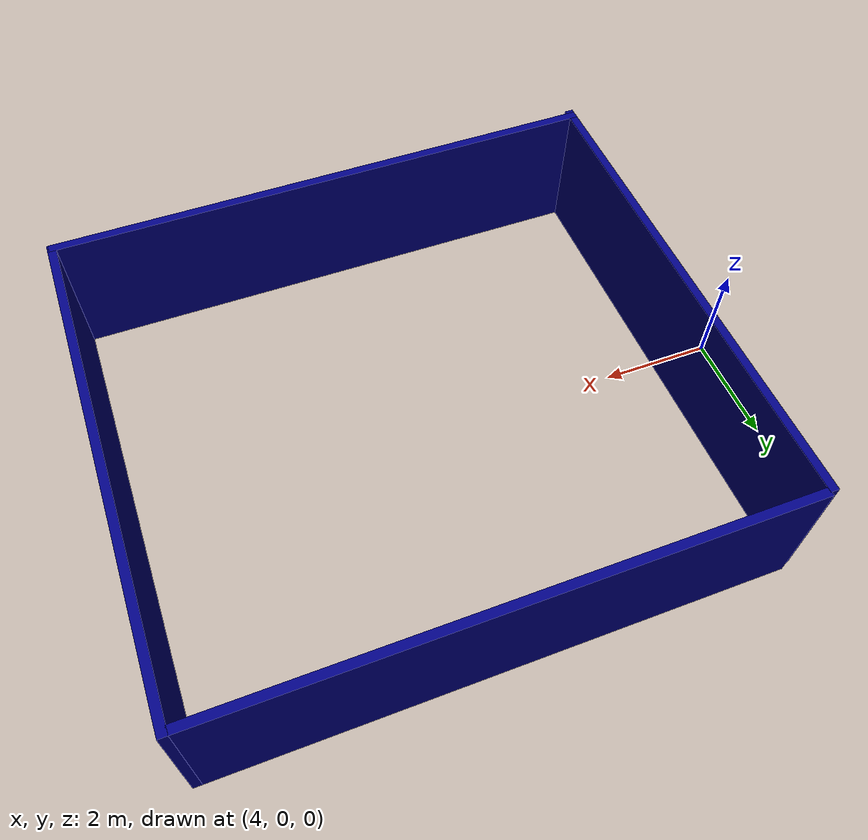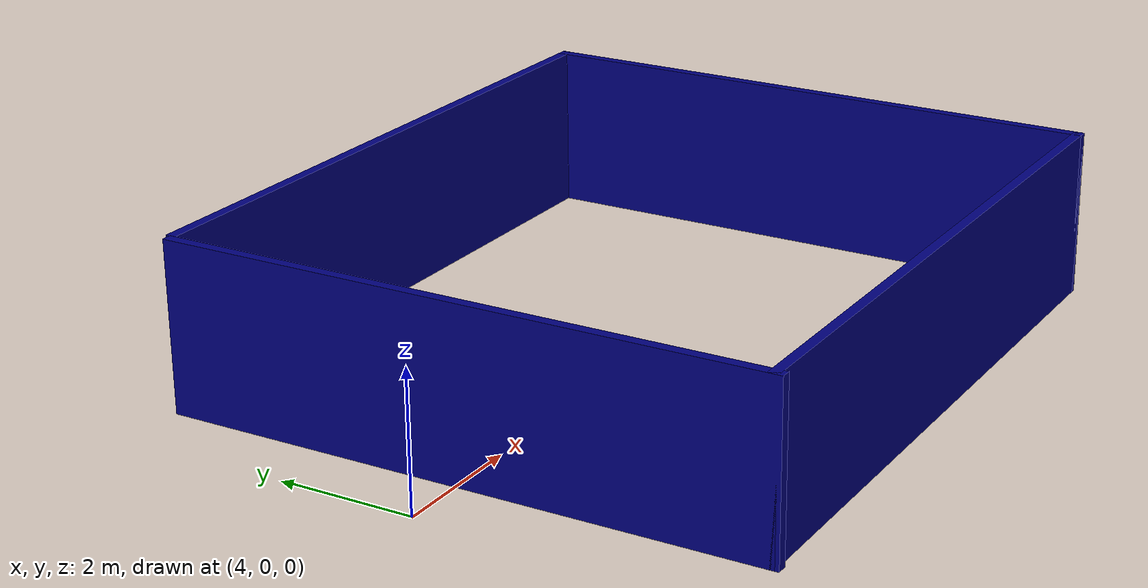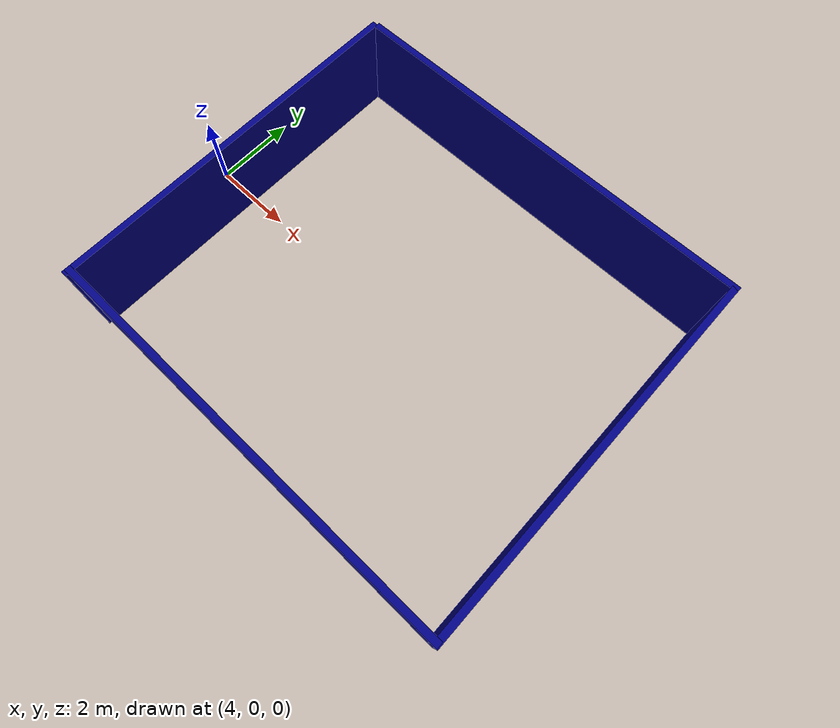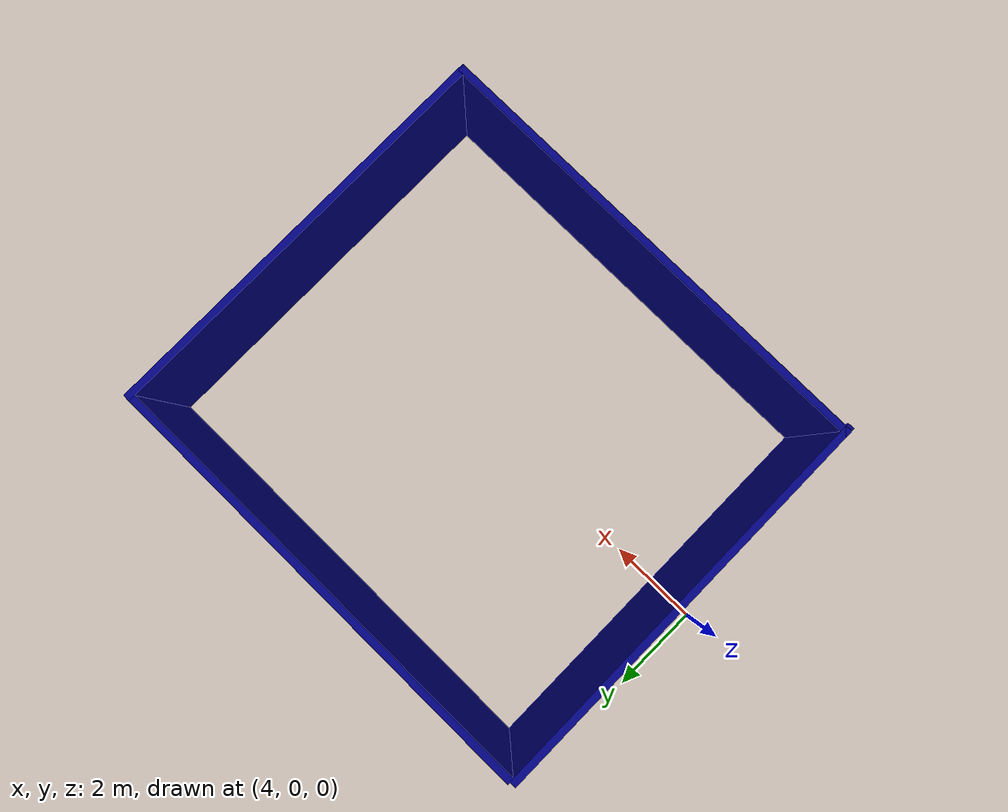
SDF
<sdf version="1.5">
 <world name="default">
  <include><uri>model://sun</uri></include>
  <include><uri>model://square_frame</uri><pose>10 0 0 0 0 0</pose></include>
  <scene><sky><clouds><speed>50</speed></clouds></sky><ambient>0 0 0 1.0</ambient><shadows>0</shadows></scene>
 </world>
</sdf>

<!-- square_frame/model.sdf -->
<sdf version='1.6'>
  <model name='square_frame'>
    <link name='Wall_0'>
      <pose frame=''>-4.99265 -0.03059 0 0 0 -1.5708</pose>
      <self_collide>0</self_collide>
      <enable_wind>0</enable_wind>
      <kinematic>0</kinematic>
      <visual name='Wall_0_Visual'>
        <pose frame=''>0 0 1.25 0 -0 0</pose>
        <geometry>
          <box>
            <size>9 0.15 2.5</size>
          </box>
        </geometry>
        <material>
          <script>
            <uri>file://media/materials/scripts/gazebo.material</uri>
            <name>Gazebo/Grey</name>
          </script>
          <ambient>0 0 0.498039 1</ambient>
        </material>
        <meta>
          <layer>0</layer>
        </meta>
        <transparency>0</transparency>
        <cast_shadows>1</cast_shadows>
      </visual>
      <collision name='Wall_0_Collision'>
        <laser_retro>0</laser_retro>
        <max_contacts>10</max_contacts>
        <pose frame=''>0 0 1.25 0 -0 0</pose>
        <geometry>
          <box>
            <size>9 0.15 2.5</size>
          </box>
        </geometry>
        <surface>
          <friction>
            <ode>
              <mu>1</mu>
              <mu2>1</mu2>
              <fdir1>0 0 0</fdir1>
              <slip1>0</slip1>
              <slip2>0</slip2>
            </ode>
            <torsional>
              <coefficient>1</coefficient>
              <patch_radius>0</patch_radius>
              <surface_radius>0</surface_radius>
              <use_patch_radius>1</use_patch_radius>
              <ode>
                <slip>0</slip>
              </ode>
            </torsional>
          </friction>
          <bounce>
            <restitution_coefficient>0</restitution_coefficient>
            <threshold>1e+06</threshold>
          </bounce>
          <contact>
            <collide_without_contact>0</collide_without_contact>
            <collide_without_contact_bitmask>1</collide_without_contact_bitmask>
            <collide_bitmask>1</collide_bitmask>
            <ode>
              <soft_cfm>0</soft_cfm>
              <soft_erp>0.2</soft_erp>
              <kp>1e+13</kp>
              <kd>1</kd>
              <max_vel>0.01</max_vel>
              <min_depth>0</min_depth>
            </ode>
            <bullet>
              <split_impulse>1</split_impulse>
              <split_impulse_penetration_threshold>-0.01</split_impulse_penetration_threshold>
              <soft_cfm>0</soft_cfm>
              <soft_erp>0.2</soft_erp>
              <kp>1e+13</kp>
              <kd>1</kd>
            </bullet>
          </contact>
        </surface>
      </collision>
    </link>

    <link name='Wall_2'>
      <pose frame=''>-0.011565 -4.39441 0 0 -0 0</pose>
      <self_collide>0</self_collide>
      <enable_wind>0</enable_wind>
      <kinematic>0</kinematic>
      <visual name='Wall_2_Visual'>
        <pose frame=''>0 0 1.25 0 -0 0</pose>
        <geometry>
          <box>
            <size>10.1122 0.15 2.5</size>
          </box>
        </geometry>
        <material>
          <script>
            <uri>file://media/materials/scripts/gazebo.material</uri>
            <name>Gazebo/Grey</name>
          </script>
          <ambient>0 0 0.498039 1</ambient>
        </material>
        <meta>
          <layer>0</layer>
        </meta>
        <transparency>0</transparency>
        <cast_shadows>1</cast_shadows>
      </visual>
      <collision name='Wall_2_Collision'>
        <laser_retro>0</laser_retro>
        <max_contacts>10</max_contacts>
        <pose frame=''>0 0 1.25 0 -0 0</pose>
        <geometry>
          <box>
            <size>10.1122 0.15 2.5</size>
          </box>
        </geometry>
        <surface>
          <friction>
            <ode>
              <mu>1</mu>
              <mu2>1</mu2>
              <fdir1>0 0 0</fdir1>
              <slip1>0</slip1>
              <slip2>0</slip2>
            </ode>
            <torsional>
              <coefficient>1</coefficient>
              <patch_radius>0</patch_radius>
              <surface_radius>0</surface_radius>
              <use_patch_radius>1</use_patch_radius>
              <ode>
                <slip>0</slip>
              </ode>
            </torsional>
          </friction>
          <bounce>
            <restitution_coefficient>0</restitution_coefficient>
            <threshold>1e+06</threshold>
          </bounce>
          <contact>
            <collide_without_contact>0</collide_without_contact>
            <collide_without_contact_bitmask>1</collide_without_contact_bitmask>
            <collide_bitmask>1</collide_bitmask>
            <ode>
              <soft_cfm>0</soft_cfm>
              <soft_erp>0.2</soft_erp>
              <kp>1e+13</kp>
              <kd>1</kd>
              <max_vel>0.01</max_vel>
              <min_depth>0</min_depth>
            </ode>
            <bullet>
              <split_impulse>1</split_impulse>
              <split_impulse_penetration_threshold>-0.01</split_impulse_penetration_threshold>
              <soft_cfm>0</soft_cfm>
              <soft_erp>0.2</soft_erp>
              <kp>1e+13</kp>
              <kd>1</kd>
            </bullet>
          </contact>
        </surface>
      </collision>
    </link>

    <link name='Wall_3'>
      <pose frame=''>4.99265 0.03059 0 0 -0 1.5708</pose>
      <self_collide>0</self_collide>
      <enable_wind>0</enable_wind>
      <kinematic>0</kinematic>
      <visual name='Wall_3_Visual'>
        <pose frame=''>0 0 1.25 0 -0 0</pose>
        <geometry>
          <box>
            <size>9 0.15 2.5</size>
          </box>
        </geometry>
        <material>
          <script>
            <uri>file://media/materials/scripts/gazebo.material</uri>
            <name>Gazebo/Grey</name>
          </script>
          <ambient>0 0 0.498039 1</ambient>
        </material>
        <meta>
          <layer>0</layer>
        </meta>
        <transparency>0</transparency>
        <cast_shadows>1</cast_shadows>
      </visual>
      <collision name='Wall_3_Collision'>
        <laser_retro>0</laser_retro>
        <max_contacts>10</max_contacts>
        <pose frame=''>0 0 1.25 0 -0 0</pose>
        <geometry>
          <box>
            <size>9 0.15 2.5</size>
          </box>
        </geometry>
        <surface>
          <friction>
            <ode>
              <mu>1</mu>
              <mu2>1</mu2>
              <fdir1>0 0 0</fdir1>
              <slip1>0</slip1>
              <slip2>0</slip2>
            </ode>
            <torsional>
              <coefficient>1</coefficient>
              <patch_radius>0</patch_radius>
              <surface_radius>0</surface_radius>
              <use_patch_radius>1</use_patch_radius>
              <ode>
                <slip>0</slip>
              </ode>
            </torsional>
          </friction>
          <bounce>
            <restitution_coefficient>0</restitution_coefficient>
            <threshold>1e+06</threshold>
          </bounce>
          <contact>
            <collide_without_contact>0</collide_without_contact>
            <collide_without_contact_bitmask>1</collide_without_contact_bitmask>
            <collide_bitmask>1</collide_bitmask>
            <ode>
              <soft_cfm>0</soft_cfm>
              <soft_erp>0.2</soft_erp>
              <kp>1e+13</kp>
              <kd>1</kd>
              <max_vel>0.01</max_vel>
              <min_depth>0</min_depth>
            </ode>
            <bullet>
              <split_impulse>1</split_impulse>
              <split_impulse_penetration_threshold>-0.01</split_impulse_penetration_threshold>
              <soft_cfm>0</soft_cfm>
              <soft_erp>0.2</soft_erp>
              <kp>1e+13</kp>
              <kd>1</kd>
            </bullet>
          </contact>
        </surface>
      </collision>
    </link>

    <link name='Wall_4'>
      <pose frame=''>0.067647 4.45559 0 0 -0 3.14159</pose>
      <self_collide>0</self_collide>
      <enable_wind>0</enable_wind>
      <kinematic>0</kinematic>
      <visual name='Wall_4_Visual'>
        <pose frame=''>0 0 1.25 0 -0 0</pose>
        <geometry>
          <box>
            <size>10 0.15 2.5</size>
          </box>
        </geometry>
        <material>
          <script>
            <uri>file://media/materials/scripts/gazebo.material</uri>
            <name>Gazebo/Grey</name>
          </script>
          <ambient>0 0 0.498039 1</ambient>
        </material>
        <meta>
          <layer>0</layer>
        </meta>
        <transparency>0</transparency>
        <cast_shadows>1</cast_shadows>
      </visual>
      <collision name='Wall_4_Collision'>
        <laser_retro>0</laser_retro>
        <max_contacts>10</max_contacts>
        <pose frame=''>0 0 1.25 0 -0 0</pose>
        <geometry>
          <box>
            <size>10 0.15 2.5</size>
          </box>
        </geometry>
        <surface>
          <friction>
            <ode>
              <mu>1</mu>
              <mu2>1</mu2>
              <fdir1>0 0 0</fdir1>
              <slip1>0</slip1>
              <slip2>0</slip2>
            </ode>
            <torsional>
              <coefficient>1</coefficient>
              <patch_radius>0</patch_radius>
              <surface_radius>0</surface_radius>
              <use_patch_radius>1</use_patch_radius>
              <ode>
                <slip>0</slip>
              </ode>
            </torsional>
          </friction>
          <bounce>
            <restitution_coefficient>0</restitution_coefficient>
            <threshold>1e+06</threshold>
          </bounce>
          <contact>
            <collide_without_contact>0</collide_without_contact>
            <collide_without_contact_bitmask>1</collide_without_contact_bitmask>
            <collide_bitmask>1</collide_bitmask>
            <ode>
              <soft_cfm>0</soft_cfm>
              <soft_erp>0.2</soft_erp>
              <kp>1e+13</kp>
              <kd>1</kd>
              <max_vel>0.01</max_vel>
              <min_depth>0</min_depth>
            </ode>
            <bullet>
              <split_impulse>1</split_impulse>
              <split_impulse_penetration_threshold>-0.01</split_impulse_penetration_threshold>
              <soft_cfm>0</soft_cfm>
              <soft_erp>0.2</soft_erp>
              <kp>1e+13</kp>
              <kd>1</kd>
            </bullet>
          </contact>
        </surface>
      </collision>
    </link>

    <static>1</static>
    <allow_auto_disable>1</allow_auto_disable>
  </model>
</sdf>
